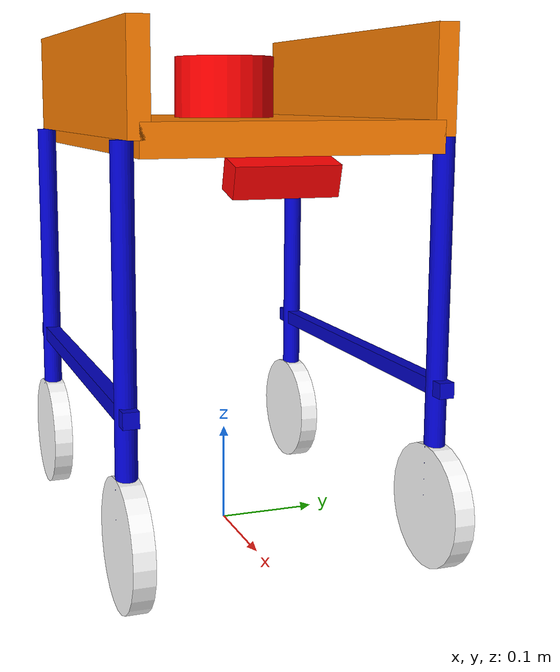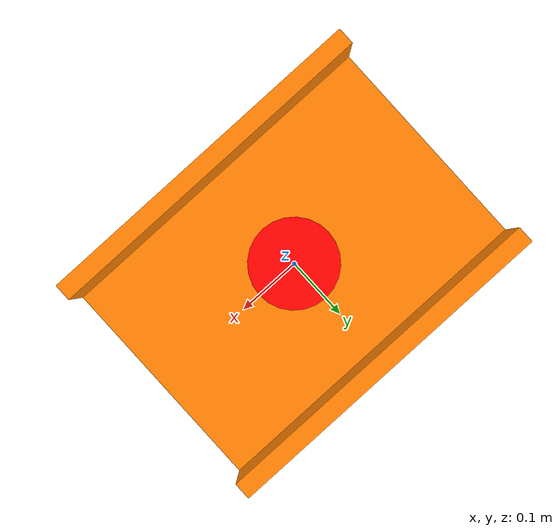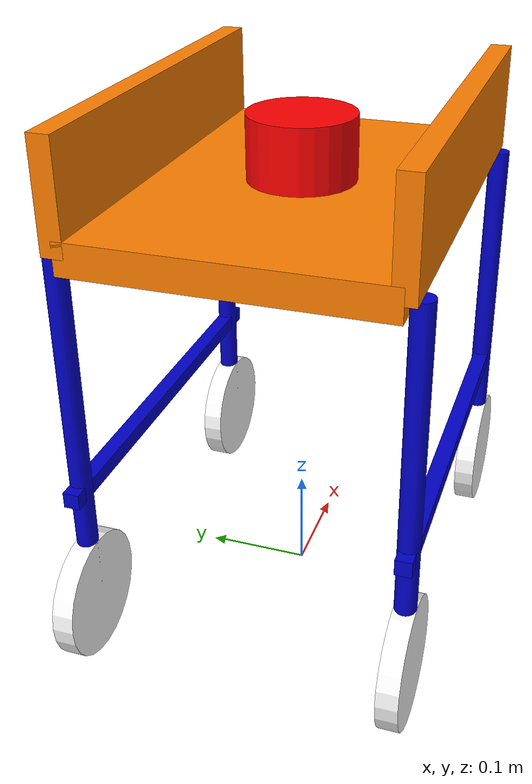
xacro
<?xml version="1.0"?>
<robot xmlns:xacro="http://www.ros.org/wiki/xacro" name="farm_bot">

  <!-- DIMENSIONS & VISUAL PROPERTIES -->
  <xacro:property name="leg_height" value="0.35"/>
  <xacro:property name="leg_radius" value="0.01"/>
  <xacro:property name="plate_length" value="0.40"/>
  <xacro:property name="plate_width" value="0.28"/>
  <xacro:property name="plate_thickness" value="0.03"/>

  <xacro:property name="wheel_radius" value="0.06"/>
  <xacro:property name="wheel_width" value="0.02"/>

  <!-- Spacing for legs/wheels relative to center -->
  <xacro:property name="wheel_x_offset" value="0.18"/> <!-- Distance to front/back -->
  <xacro:property name="wheel_y_offset" value="0.15"/> <!-- Distance to Left/Right -->

  <!-- MATERIALS -->
  <material name="orange">
    <color rgba="1.0 0.5 0.0 1.0"/>
  </material>
  <material name="blue">
    <color rgba="0.0 0.0 0.8 1.0"/>
  </material>
  <material name="white">
    <color rgba="1.0 1.0 1.0 1.0"/>
  </material>
  <material name="black">
    <color rgba="0.0 0.0 0.0 1.0"/>
  </material>

  <!-- BASE LINKS & JOINTS -->

  <!-- Dummy root link (Projected on ground) -->
  <link name="base_footprint"/>

  <joint name="base_joint" type="fixed">
    <parent link="base_footprint"/>
    <child link="base_link"/>
    <origin xyz="0 0 ${wheel_radius}" rpy="0 0 0"/>
  </joint>

  <!-- Main Body Link (Contains the Frame Structure) -->
  <link name="base_link">
    <inertial>
      <mass value="10.0"/>
      <origin xyz="0 0 ${leg_height/2}"/>
      <inertia ixx="0.5" ixy="0" ixz="0" iyy="0.5" iyz="0" izz="0.5"/>
    </inertial>

    <!-- Top Plate (Tray) - Orange -->
    <visual>
      <origin xyz="0 0 ${leg_height}"/>
      <geometry>
        <box size="${plate_length} ${plate_width} ${plate_thickness}"/>
      </geometry>
      <material name="orange"/>
    </visual>
    <collision>
      <origin xyz="0 0 ${leg_height}"/>
      <geometry>
        <box size="${plate_length} ${plate_width} ${plate_thickness}"/>
      </geometry>
    </collision>

    <!-- Tray Rails (Visual Detail) - Orange -->
    <visual>
      <origin xyz="0 ${plate_width/2} ${leg_height + 0.05}"/>
      <geometry>
        <box size="${plate_length} 0.02 0.1"/>
      </geometry>
      <material name="orange"/>
    </visual>
    <visual>
      <origin xyz="0 -${plate_width/2} ${leg_height + 0.05}"/>
      <geometry>
        <box size="${plate_length} 0.02 0.1"/>
      </geometry>
      <material name="orange"/>
    </visual>

    <!-- LEGS (Blue) -->
    <!-- Front Left -->
    <visual>
      <origin xyz="${wheel_x_offset} ${wheel_y_offset} ${leg_height/2}"/>
      <geometry><cylinder length="${leg_height}" radius="${leg_radius}"/></geometry>
      <material name="blue"/>
    </visual>
    <collision>
      <origin xyz="${wheel_x_offset} ${wheel_y_offset} ${leg_height/2}"/>
      <geometry><cylinder length="${leg_height}" radius="${leg_radius}"/></geometry>
    </collision>

    <!-- Front Right -->
    <visual>
      <origin xyz="${wheel_x_offset} -${wheel_y_offset} ${leg_height/2}"/>
      <geometry><cylinder length="${leg_height}" radius="${leg_radius}"/></geometry>
      <material name="blue"/>
    </visual>
    <collision>
      <origin xyz="${wheel_x_offset} -${wheel_y_offset} ${leg_height/2}"/>
      <geometry><cylinder length="${leg_height}" radius="${leg_radius}"/></geometry>
    </collision>

    <!-- Rear Left -->
    <visual>
      <origin xyz="-${wheel_x_offset} ${wheel_y_offset} ${leg_height/2}"/>
      <geometry><cylinder length="${leg_height}" radius="${leg_radius}"/></geometry>
      <material name="blue"/>
    </visual>
    <collision>
      <origin xyz="-${wheel_x_offset} ${wheel_y_offset} ${leg_height/2}"/>
      <geometry><cylinder length="${leg_height}" radius="${leg_radius}"/></geometry>
    </collision>

    <!-- Rear Right -->
    <visual>
      <origin xyz="-${wheel_x_offset} -${wheel_y_offset} ${leg_height/2}"/>
      <geometry><cylinder length="${leg_height}" radius="${leg_radius}"/></geometry>
      <material name="blue"/>
    </visual>
    <collision>
      <origin xyz="-${wheel_x_offset} -${wheel_y_offset} ${leg_height/2}"/>
      <geometry><cylinder length="${leg_height}" radius="${leg_radius}"/></geometry>
    </collision>

    <!-- Side Bars (Connecting Front/Back) - Blue -->
    <visual>
      <origin xyz="0 ${wheel_y_offset} ${leg_height/3}"/>
      <geometry><box size="${plate_length} ${leg_radius*1.5} ${leg_radius*1.5}"/></geometry>
      <material name="blue"/>
    </visual>
    <visual>
      <origin xyz="0 -${wheel_y_offset} ${leg_height/3}"/>
      <geometry><box size="${plate_length} ${leg_radius*1.5} ${leg_radius*1.5}"/></geometry>
      <material name="blue"/>
    </visual>

  </link>

  <!-- WHEELS -->
  <xacro:macro name="wheel" params="name x y friction is_driven">
    <link name="${name}_link">
      <visual>
        <origin rpy="1.5707 0 0"/>
        <geometry>
          <cylinder length="${wheel_width}" radius="${wheel_radius}"/>
        </geometry>
        <material name="white"/>
      </visual>
      <collision>
        <origin rpy="1.5707 0 0"/>
        <geometry>
          <cylinder length="${wheel_width}" radius="${wheel_radius}"/>
        </geometry>
        <surface>
          <friction>
            <ode>
              <mu>${friction}</mu>
              <mu2>${friction}</mu2>
              <fdir1>1 0 0</fdir1>
              <slip1>0.0</slip1>
              <slip2>0.0</slip2>
            </ode>
          </friction>
        </surface>
      </collision>
      <inertial>
        <mass value="1.5"/>
        <inertia ixx="0.01" ixy="0" ixz="0" iyy="0.01" iyz="0" izz="0.01"/>
      </inertial>
    </link>

    <joint name="${name}_joint" type="continuous">
      <parent link="base_link"/>
      <child link="${name}_link"/>
      <origin xyz="${x} ${y} 0"/>
      <axis xyz="0 1 0"/>
    </joint>
  </xacro:macro>

  <!-- DRIVEN WHEELS (REAR) -->
  <xacro:wheel name="rear_left_wheel" x="-${wheel_x_offset}" y="${wheel_y_offset}" friction="1.0" is_driven="true"/>
  <xacro:wheel name="rear_right_wheel" x="-${wheel_x_offset}" y="-${wheel_y_offset}" friction="1.0" is_driven="true"/>

  <!-- PASSIVE WHEELS (FRONT) -->
  <xacro:wheel name="front_left_wheel" x="${wheel_x_offset}" y="${wheel_y_offset}" friction="0.01" is_driven="false"/>
  <xacro:wheel name="front_right_wheel" x="${wheel_x_offset}" y="-${wheel_y_offset}" friction="0.01" is_driven="false"/>

  <!-- SENSORS -->

  <material name="red">
    <color rgba="1.0 0.0 0.0 1.0"/>
  </material>

  <!-- Camera (Hanging UNDER the front tray) -->
  <link name="camera_link">
    <visual>
      <geometry>
        <box size="0.03 0.1 0.03"/>
      </geometry>
      <material name="red"/>
    </visual>
    <inertial>
      <mass value="0.1"/>
      <inertia ixx="0.001" ixy="0" ixz="0" iyy="0.001" iyz="0" izz="0.001"/>
    </inertial>
  </link>
  <joint name="camera_joint" type="fixed">
    <parent link="base_link"/>
    <child link="camera_link"/>
    <!-- Position: Front edge, centered, distinctly UNDER the plate -->
    <origin xyz="${plate_length/2 - 0.04} 0 ${leg_height - plate_thickness/2 - 0.02}" rpy="0 0.26 0"/>
  </joint>

  <!-- Lidar (Top of tray) -->
  <link name="lidar_link">
     <visual>
      <geometry>
        <cylinder radius="0.05" length="0.06"/>
      </geometry>
      <material name="red"/>
    </visual>
  </link>
  <joint name="lidar_joint" type="fixed">
    <parent link="base_link"/>
    <child link="lidar_link"/>
    <!-- Position: Top of plate, centered -->
    <origin xyz="0 0 ${leg_height + plate_thickness/2 + 0.03}" rpy="0 0 0"/>
  </joint>

  <!-- GAZEBO PLUGINS -->

  <gazebo>
    <plugin name="diff_drive" filename="libgazebo_ros_diff_drive.so">
      <ros>
        <namespace>/</namespace>
      </ros>
      <update_rate>50</update_rate>

      <left_joint>rear_left_wheel_joint</left_joint>
      <right_joint>rear_right_wheel_joint</right_joint>

      <wheel_separation>${wheel_y_offset*2}</wheel_separation>
      <wheel_diameter>${wheel_radius*2}</wheel_diameter>

      <robot_base_frame>base_footprint</robot_base_frame>
      <odometry_frame>odom</odometry_frame>
      <publish_odom>true</publish_odom>
      <publish_odom_tf>true</publish_odom_tf>
      <publish_wheel_tf>true</publish_wheel_tf>
    </plugin>
  </gazebo>

  <gazebo reference="lidar_link">
    <sensor type="ray" name="lidar_sensor">
      <pose>0 0 0 0 0 0</pose>
      <visualize>false</visualize>
      <update_rate>10</update_rate>
      <ray>
        <scan>
          <horizontal>
            <samples>360</samples>
            <resolution>1</resolution>
            <min_angle>-3.14</min_angle>
            <max_angle>3.14</max_angle>
          </horizontal>
        </scan>
        <range>
          <min>0.10</min>
          <max>10.0</max>
          <resolution>0.01</resolution>
        </range>
      </ray>
      <plugin name="gazebo_ros_ray_sensor" filename="libgazebo_ros_ray_sensor.so">
        <ros>
          <namespace>/</namespace>
          <remapping>~/out:=scan</remapping>
        </ros>
        <output_type>sensor_msgs/LaserScan</output_type>
        <frame_name>lidar_link</frame_name>
      </plugin>
    </sensor>
  </gazebo>

  <gazebo reference="camera_link">
    <sensor type="camera" name="camera_sensor">
      <update_rate>15</update_rate>
      <camera name="head_camera">
        <horizontal_fov>1.047</horizontal_fov>
        <image>
          <width>640</width>
          <height>480</height>
          <format>R8G8B8</format>
        </image>
        <clip>
          <near>0.05</near>
          <far>20.0</far>
        </clip>
      </camera>
      <plugin name="gazebo_ros_camera" filename="libgazebo_ros_camera.so">
        <ros>
          <namespace>/</namespace>
        </ros>
        <camera_name>camera</camera_name>
        <image_topic_name>image_raw</image_topic_name>
        <camera_info_topic_name>camera_info</camera_info_topic_name>
        <frame_name>camera_link</frame_name>
      </plugin>
    </sensor>
  </gazebo>

</robot>
